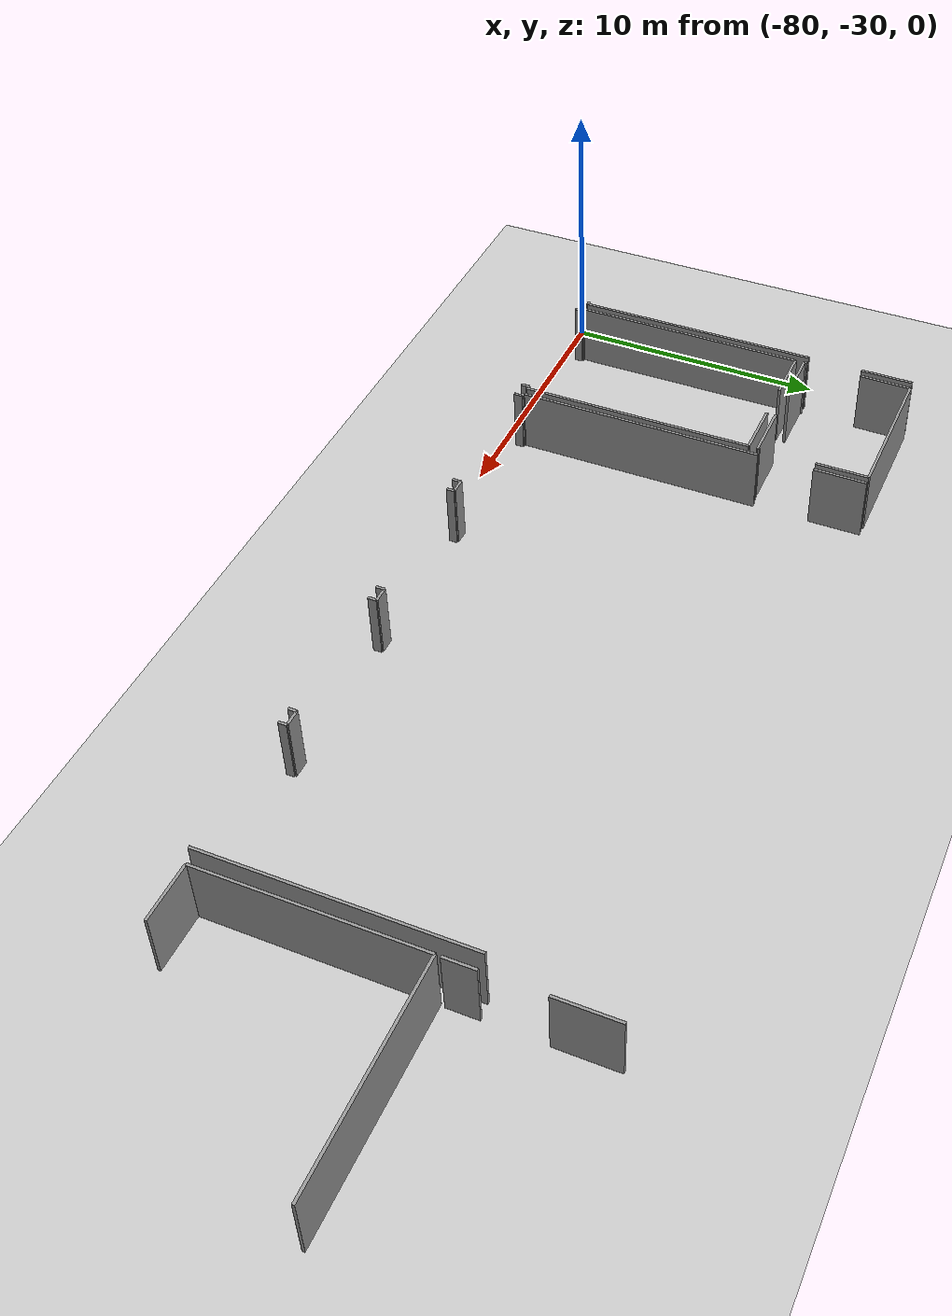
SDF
<sdf version="1.6">
 <world name="default">
  <model name="ground_plane">
   <static>1</static>
   <link name="link">
    <collision name="collision">
     <geometry><plane><normal>0 0 1</normal><size>100 100</size></plane></geometry>
     <surface><friction><ode><mu>100</mu><mu2>50</mu2></ode></friction></surface>
    </collision>
    <visual name="visual">
     <cast_shadows>0</cast_shadows>
     <geometry><plane><normal>0 0 1</normal><size>100 100</size></plane></geometry>
     <material>
      <script><uri>file://media/materials/scripts/gazebo.material</uri><name>Gazebo/Grey</name></script>
     </material>
    </visual>
   </link>
  </model>
  <model name="50010536_PLAN3">
   <static>1</static>
   <link name="Wall_144">
    <collision name="Wall_144_Collision">
     <geometry><box><size>2.02114084373 0.1 2.5</size></box></geometry>
     <pose>1.01057042186 0 1.25 0 0 0</pose>
    </collision>
    <visual name="Wall_144_Visual">
     <pose>1.01057042186 0 1.25 0 0 0</pose>
     <geometry><box><size>2.02114084373 0.1 2.5</size></box></geometry>
     <material>
      <script><uri>file://media/materials/scripts/gazebo.material</uri><name>Gazebo/Grey</name></script>
      <ambient>1 1 1 1</ambient>
     </material>
    </visual>
    <pose>23.7056788242 -45.3773164461 0 0 0 -1.57079632679</pose>
   </link>
   <link name="Wall_145">
    <collision name="Wall_145_Collision">
     <geometry><box><size>9.35987048852 0.1 2.5</size></box></geometry>
     <pose>4.67993524426 0 1.25 0 0 0</pose>
    </collision>
    <visual name="Wall_145_Visual">
     <pose>4.67993524426 0 1.25 0 0 0</pose>
     <geometry><box><size>9.35987048852 0.1 2.5</size></box></geometry>
     <material>
      <script><uri>file://media/materials/scripts/gazebo.material</uri><name>Gazebo/Grey</name></script>
      <ambient>1 1 1 1</ambient>
     </material>
    </visual>
    <pose>23.7056788242 -49.5153350475 0 0 0 -1.57079632679</pose>
   </link>
   <link name="Wall_146">
    <collision name="Wall_146_Collision">
     <geometry><box><size>0.139161349713 0.1 2.5</size></box></geometry>
     <pose>0.0695806748564 0 1.25 0 0 0</pose>
    </collision>
    <visual name="Wall_146_Visual">
     <pose>0.0695806748564 0 1.25 0 0 0</pose>
     <geometry><box><size>0.139161349713 0.1 2.5</size></box></geometry>
     <material>
      <script><uri>file://media/materials/scripts/gazebo.material</uri><name>Gazebo/Grey</name></script>
      <ambient>1 1 1 1</ambient>
     </material>
    </visual>
    <pose>23.7056788242 -58.875205536 0 0 0 3.14159265359</pose>
   </link>
   <link name="Wall_153">
    <collision name="Wall_153_Collision">
     <geometry><box><size>5.65685807701 0.1 2.5</size></box></geometry>
     <pose>2.8284290385 0 1.25 0 0 0</pose>
    </collision>
    <visual name="Wall_153_Visual">
     <pose>2.8284290385 0 1.25 0 0 0</pose>
     <geometry><box><size>5.65685807701 0.1 2.5</size></box></geometry>
     <material>
      <script><uri>file://media/materials/scripts/gazebo.material</uri><name>Gazebo/Grey</name></script>
      <ambient>1 1 1 1</ambient>
     </material>
    </visual>
    <pose>24.0657715138 -45.3674126274 0 0 0 0.0</pose>
   </link>
   <link name="Wall_154">
    <collision name="Wall_154_Collision">
     <geometry><box><size>2.01606196235 0.1 2.5</size></box></geometry>
     <pose>1.00803098118 0 1.25 0 0 0</pose>
    </collision>
    <visual name="Wall_154_Visual">
     <pose>1.00803098118 0 1.25 0 0 0</pose>
     <geometry><box><size>2.01606196235 0.1 2.5</size></box></geometry>
     <material>
      <script><uri>file://media/materials/scripts/gazebo.material</uri><name>Gazebo/Grey</name></script>
      <ambient>1 1 1 1</ambient>
     </material>
    </visual>
    <pose>29.7226295908 -45.3674126274 0 0 0 -1.57079632679</pose>
   </link>
   <link name="Wall_155">
    <collision name="Wall_155_Collision">
     <geometry><box><size>0.0807542138844 0.1 2.5</size></box></geometry>
     <pose>0.0403771069422 0 1.25 0 0 0</pose>
    </collision>
    <visual name="Wall_155_Visual">
     <pose>0.0403771069422 0 1.25 0 0 0</pose>
     <geometry><box><size>0.0807542138844 0.1 2.5</size></box></geometry>
     <material>
      <script><uri>file://media/materials/scripts/gazebo.material</uri><name>Gazebo/Grey</name></script>
      <ambient>1 1 1 1</ambient>
     </material>
    </visual>
    <pose>29.7226295908 -49.5249849221 0 0 0 -1.57079632679</pose>
   </link>
   <link name="Wall_156">
    <collision name="Wall_156_Collision">
     <geometry><box><size>2.15293781545 0.1 2.5</size></box></geometry>
     <pose>1.07646890772 0 1.25 0 0 0</pose>
    </collision>
    <visual name="Wall_156_Visual">
     <pose>1.07646890772 0 1.25 0 0 0</pose>
     <geometry><box><size>2.15293781545 0.1 2.5</size></box></geometry>
     <material>
      <script><uri>file://media/materials/scripts/gazebo.material</uri><name>Gazebo/Grey</name></script>
      <ambient>1 1 1 1</ambient>
     </material>
    </visual>
    <pose>29.7226295908 -49.605739136 0 0 0 3.14159265359</pose>
   </link>
   <link name="Wall_157">
    <collision name="Wall_157_Collision">
     <geometry><box><size>2.0213947878 0.1 2.5</size></box></geometry>
     <pose>1.0106973939 0 1.25 0 0 0</pose>
    </collision>
    <visual name="Wall_157_Visual">
     <pose>1.0106973939 0 1.25 0 0 0</pose>
     <geometry><box><size>2.0213947878 0.1 2.5</size></box></geometry>
     <material>
      <script><uri>file://media/materials/scripts/gazebo.material</uri><name>Gazebo/Grey</name></script>
      <ambient>1 1 1 1</ambient>
     </material>
    </visual>
    <pose>26.0673586643 -49.605739136 0 0 0 3.14159265359</pose>
   </link>
   <link name="Wall_158">
    <collision name="Wall_158_Collision">
     <geometry><box><size>0.109195949592 0.1 2.5</size></box></geometry>
     <pose>0.0545979747961 0 1.25 0 0 0</pose>
    </collision>
    <visual name="Wall_158_Visual">
     <pose>0.0545979747961 0 1.25 0 0 0</pose>
     <geometry><box><size>0.109195949592 0.1 2.5</size></box></geometry>
     <material>
      <script><uri>file://media/materials/scripts/gazebo.material</uri><name>Gazebo/Grey</name></script>
      <ambient>1 1 1 1</ambient>
     </material>
    </visual>
    <pose>24.0459638765 -49.605739136 0 0 0 1.57079632679</pose>
   </link>
   <link name="Wall_159">
    <collision name="Wall_159_Collision">
     <geometry><box><size>1.97908525297 0.1 2.5</size></box></geometry>
     <pose>0.989542626485 0 1.25 0 0 0</pose>
    </collision>
    <visual name="Wall_159_Visual">
     <pose>0.989542626485 0 1.25 0 0 0</pose>
     <geometry><box><size>1.97908525297 0.1 2.5</size></box></geometry>
     <material>
      <script><uri>file://media/materials/scripts/gazebo.material</uri><name>Gazebo/Grey</name></script>
      <ambient>1 1 1 1</ambient>
     </material>
    </visual>
    <pose>24.0459638765 -47.3463987557 0 0 0 1.56078767859</pose>
   </link>
   <link name="Wall_160">
    <collision name="Wall_160_Collision">
     <geometry><box><size>8.9365457258 0.1 2.5</size></box></geometry>
     <pose>4.4682728629 0 1.25 0 0 0</pose>
    </collision>
    <visual name="Wall_160_Visual">
     <pose>4.4682728629 0 1.25 0 0 0</pose>
     <geometry><box><size>8.9365457258 0.1 2.5</size></box></geometry>
     <material>
      <script><uri>file://media/materials/scripts/gazebo.material</uri><name>Gazebo/Grey</name></script>
      <ambient>1 1 1 1</ambient>
     </material>
    </visual>
    <pose>24.0766911088 -58.8896803479 0 0 0 1.57079632679</pose>
   </link>
   <link name="Wall_161">
    <collision name="Wall_161_Collision">
     <geometry><box><size>2.03434593531 0.1 2.5</size></box></geometry>
     <pose>1.01717296765 0 1.25 0 0 0</pose>
    </collision>
    <visual name="Wall_161_Visual">
     <pose>1.01717296765 0 1.25 0 0 0</pose>
     <geometry><box><size>2.03434593531 0.1 2.5</size></box></geometry>
     <material>
      <script><uri>file://media/materials/scripts/gazebo.material</uri><name>Gazebo/Grey</name></script>
      <ambient>1 1 1 1</ambient>
     </material>
    </visual>
    <pose>24.0766911088 -49.9531346221 0 0 0 0.0</pose>
   </link>
   <link name="Wall_162">
    <collision name="Wall_162_Collision">
     <geometry><box><size>2.11230676444 0.1 2.5</size></box></geometry>
     <pose>1.05615338222 0 1.25 0 0 0</pose>
    </collision>
    <visual name="Wall_162_Visual">
     <pose>1.05615338222 0 1.25 0 0 0</pose>
     <geometry><box><size>2.11230676444 0.1 2.5</size></box></geometry>
     <material>
      <script><uri>file://media/materials/scripts/gazebo.material</uri><name>Gazebo/Grey</name></script>
      <ambient>1 1 1 1</ambient>
     </material>
    </visual>
    <pose>27.5973716789 -49.9531346221 0 0 0 0.0</pose>
   </link>
   <link name="Wall_163">
    <collision name="Wall_163_Collision">
     <geometry><box><size>8.93527600546 0.1 2.5</size></box></geometry>
     <pose>4.46763800273 0 1.25 0 0 0</pose>
    </collision>
    <visual name="Wall_163_Visual">
     <pose>4.46763800273 0 1.25 0 0 0</pose>
     <geometry><box><size>8.93527600546 0.1 2.5</size></box></geometry>
     <material>
      <script><uri>file://media/materials/scripts/gazebo.material</uri><name>Gazebo/Grey</name></script>
      <ambient>1 1 1 1</ambient>
     </material>
    </visual>
    <pose>29.7096784433 -49.9531346221 0 0 0 -1.57079632679</pose>
   </link>
   <link name="Wall_164">
    <collision name="Wall_164_Collision">
     <geometry><box><size>0.142208678539 0.1 2.5</size></box></geometry>
     <pose>0.0711043392693 0 1.25 0 0 0</pose>
    </collision>
    <visual name="Wall_164_Visual">
     <pose>0.0711043392693 0 1.25 0 0 0</pose>
     <geometry><box><size>0.142208678539 0.1 2.5</size></box></geometry>
     <material>
      <script><uri>file://media/materials/scripts/gazebo.material</uri><name>Gazebo/Grey</name></script>
      <ambient>1 1 1 1</ambient>
     </material>
    </visual>
    <pose>29.7096784433 -58.8884106276 0 0 0 3.14159265359</pose>
   </link>
   <link name="Wall_165">
    <collision name="Wall_165_Collision">
     <geometry><box><size>0.317684030092 0.1 2.5</size></box></geometry>
     <pose>0.158842015046 0 1.25 0 0 0</pose>
    </collision>
    <visual name="Wall_165_Visual">
     <pose>0.158842015046 0 1.25 0 0 0</pose>
     <geometry><box><size>0.317684030092 0.1 2.5</size></box></geometry>
     <material>
      <script><uri>file://media/materials/scripts/gazebo.material</uri><name>Gazebo/Grey</name></script>
      <ambient>1 1 1 1</ambient>
     </material>
    </visual>
    <pose>29.5674697648 -58.8884106276 0 0 0 -1.57079632679</pose>
   </link>
   <link name="Wall_166">
    <collision name="Wall_166_Collision">
     <geometry><box><size>0.306002602927 0.1 2.5</size></box></geometry>
     <pose>0.153001301463 0 1.25 0 0 0</pose>
    </collision>
    <visual name="Wall_166_Visual">
     <pose>0.153001301463 0 1.25 0 0 0</pose>
     <geometry><box><size>0.306002602927 0.1 2.5</size></box></geometry>
     <material>
      <script><uri>file://media/materials/scripts/gazebo.material</uri><name>Gazebo/Grey</name></script>
      <ambient>1 1 1 1</ambient>
     </material>
    </visual>
    <pose>24.2143287941 -59.2060946577 0 0 0 1.57079632679</pose>
   </link>
   <link name="Wall_167">
    <collision name="Wall_167_Collision">
     <geometry><box><size>0.138030924266 0.1 2.5</size></box></geometry>
     <pose>0.0690154621328 0 1.25 0 0 0</pose>
    </collision>
    <visual name="Wall_167_Visual">
     <pose>0.0690154621328 0 1.25 0 0 0</pose>
     <geometry><box><size>0.138030924266 0.1 2.5</size></box></geometry>
     <material>
      <script><uri>file://media/materials/scripts/gazebo.material</uri><name>Gazebo/Grey</name></script>
      <ambient>1 1 1 1</ambient>
     </material>
    </visual>
    <pose>24.2143287941 -58.9000920547 0 0 0 3.0660906925</pose>
   </link>
   <link name="Wall_168">
    <collision name="Wall_168_Collision">
     <geometry><box><size>9.40380281243 0.1 2.5</size></box></geometry>
     <pose>4.70190140622 0 1.25 0 0 0</pose>
    </collision>
    <visual name="Wall_168_Visual">
     <pose>4.70190140622 0 1.25 0 0 0</pose>
     <geometry><box><size>9.40380281243 0.1 2.5</size></box></geometry>
     <material>
      <script><uri>file://media/materials/scripts/gazebo.material</uri><name>Gazebo/Grey</name></script>
      <ambient>1 1 1 1</ambient>
     </material>
    </visual>
    <pose>30.0596133702 -58.8843475225 0 0 0 1.57079632679</pose>
   </link>
   <link name="Wall_169">
    <collision name="Wall_169_Collision">
     <geometry><box><size>2.01352252166 0.1 2.5</size></box></geometry>
     <pose>1.00676126083 0 1.25 0 0 0</pose>
    </collision>
    <visual name="Wall_169_Visual">
     <pose>1.00676126083 0 1.25 0 0 0</pose>
     <geometry><box><size>2.01352252166 0.1 2.5</size></box></geometry>
     <material>
      <script><uri>file://media/materials/scripts/gazebo.material</uri><name>Gazebo/Grey</name></script>
      <ambient>1 1 1 1</ambient>
     </material>
    </visual>
    <pose>30.0596133702 -47.3547789099 0 0 0 1.57079632679</pose>
   </link>
   <link name="Wall_172">
    <collision name="Wall_172_Collision">
     <geometry><box><size>9.63489191506 0.1 2.5</size></box></geometry>
     <pose>4.81744595753 0 1.25 0 0 0</pose>
    </collision>
    <visual name="Wall_172_Visual">
     <pose>4.81744595753 0 1.25 0 0 0</pose>
     <geometry><box><size>9.63489191506 0.1 2.5</size></box></geometry>
     <material>
      <script><uri>file://media/materials/scripts/gazebo.material</uri><name>Gazebo/Grey</name></script>
      <ambient>1 1 1 1</ambient>
     </material>
    </visual>
    <pose>53.5428371901 -49.5592673714 0 0 0 -1.57079632679</pose>
   </link>
   <link name="Wall_173">
    <collision name="Wall_173_Collision">
     <geometry><box><size>0.310065708028 0.1 2.5</size></box></geometry>
     <pose>0.155032854014 0 1.25 0 0 0</pose>
    </collision>
    <visual name="Wall_173_Visual">
     <pose>0.155032854014 0 1.25 0 0 0</pose>
     <geometry><box><size>0.310065708028 0.1 2.5</size></box></geometry>
     <material>
      <script><uri>file://media/materials/scripts/gazebo.material</uri><name>Gazebo/Grey</name></script>
      <ambient>1 1 1 1</ambient>
     </material>
    </visual>
    <pose>48.2453099705 -59.1941592864 0 0 0 1.57079632679</pose>
   </link>
   <link name="Wall_174">
    <collision name="Wall_174_Collision">
     <geometry><box><size>0.621909024537 0.1 2.5</size></box></geometry>
     <pose>0.310954512269 0 1.25 0 0 0</pose>
    </collision>
    <visual name="Wall_174_Visual">
     <pose>0.310954512269 0 1.25 0 0 0</pose>
     <geometry><box><size>0.621909024537 0.1 2.5</size></box></geometry>
     <material>
      <script><uri>file://media/materials/scripts/gazebo.material</uri><name>Gazebo/Grey</name></script>
      <ambient>1 1 1 1</ambient>
     </material>
    </visual>
    <pose>48.2453099705 -58.8840935784 0 0 0 3.14159265359</pose>
   </link>
   <link name="Wall_175">
    <collision name="Wall_175_Collision">
     <geometry><box><size>0.305748658858 0.1 2.5</size></box></geometry>
     <pose>0.152874329429 0 1.25 0 0 0</pose>
    </collision>
    <visual name="Wall_175_Visual">
     <pose>0.152874329429 0 1.25 0 0 0</pose>
     <geometry><box><size>0.305748658858 0.1 2.5</size></box></geometry>
     <material>
      <script><uri>file://media/materials/scripts/gazebo.material</uri><name>Gazebo/Grey</name></script>
      <ambient>1 1 1 1</ambient>
     </material>
    </visual>
    <pose>47.6234009459 -58.8840935784 0 0 0 -1.57079632679</pose>
   </link>
   <link name="Wall_176">
    <collision name="Wall_176_Collision">
     <geometry><box><size>0.323778687744 0.1 2.5</size></box></geometry>
     <pose>0.161889343872 0 1.25 0 0 0</pose>
    </collision>
    <visual name="Wall_176_Visual">
     <pose>0.161889343872 0 1.25 0 0 0</pose>
     <geometry><box><size>0.323778687744 0.1 2.5</size></box></geometry>
     <material>
      <script><uri>file://media/materials/scripts/gazebo.material</uri><name>Gazebo/Grey</name></script>
      <ambient>1 1 1 1</ambient>
     </material>
    </visual>
    <pose>42.2004253563 -59.1898422372 0 0 0 1.57079632679</pose>
   </link>
   <link name="Wall_177">
    <collision name="Wall_177_Collision">
     <geometry><box><size>0.570866266705 0.1 2.5</size></box></geometry>
     <pose>0.285433133352 0 1.25 0 0 0</pose>
    </collision>
    <visual name="Wall_177_Visual">
     <pose>0.285433133352 0 1.25 0 0 0</pose>
     <geometry><box><size>0.570866266705 0.1 2.5</size></box></geometry>
     <material>
      <script><uri>file://media/materials/scripts/gazebo.material</uri><name>Gazebo/Grey</name></script>
      <ambient>1 1 1 1</ambient>
     </material>
    </visual>
    <pose>42.2004253563 -58.8660635495 0 0 0 3.14159265359</pose>
   </link>
   <link name="Wall_178">
    <collision name="Wall_178_Collision">
     <geometry><box><size>0.318445862299 0.1 2.5</size></box></geometry>
     <pose>0.159222931149 0 1.25 0 0 0</pose>
    </collision>
    <visual name="Wall_178_Visual">
     <pose>0.159222931149 0 1.25 0 0 0</pose>
     <geometry><box><size>0.318445862299 0.1 2.5</size></box></geometry>
     <material>
      <script><uri>file://media/materials/scripts/gazebo.material</uri><name>Gazebo/Grey</name></script>
      <ambient>1 1 1 1</ambient>
     </material>
    </visual>
    <pose>41.6295590896 -58.8660635495 0 0 0 -1.57079632679</pose>
   </link>
   <link name="Wall_179">
    <collision name="Wall_179_Collision">
     <geometry><box><size>0.30320921817 0.1 2.5</size></box></geometry>
     <pose>0.151604609085 0 1.25 0 0 0</pose>
    </collision>
    <visual name="Wall_179_Visual">
     <pose>0.151604609085 0 1.25 0 0 0</pose>
     <geometry><box><size>0.30320921817 0.1 2.5</size></box></geometry>
     <material>
      <script><uri>file://media/materials/scripts/gazebo.material</uri><name>Gazebo/Grey</name></script>
      <ambient>1 1 1 1</ambient>
     </material>
    </visual>
    <pose>36.1608735676 -59.1845094118 0 0 0 1.57079632679</pose>
   </link>
   <link name="Wall_180">
    <collision name="Wall_180_Collision">
     <geometry><box><size>0.552328349681 0.1 2.5</size></box></geometry>
     <pose>0.27616417484 0 1.25 0 0 0</pose>
    </collision>
    <visual name="Wall_180_Visual">
     <pose>0.27616417484 0 1.25 0 0 0</pose>
     <geometry><box><size>0.552328349681 0.1 2.5</size></box></geometry>
     <material>
      <script><uri>file://media/materials/scripts/gazebo.material</uri><name>Gazebo/Grey</name></script>
      <ambient>1 1 1 1</ambient>
     </material>
    </visual>
    <pose>36.1608735676 -58.8813001936 0 0 0 3.14159265359</pose>
   </link>
   <link name="Wall_181">
    <collision name="Wall_181_Collision">
     <geometry><box><size>0.327587848776 0.1 2.5</size></box></geometry>
     <pose>0.163793924388 0 1.25 0 0 0</pose>
    </collision>
    <visual name="Wall_181_Visual">
     <pose>0.163793924388 0 1.25 0 0 0</pose>
     <geometry><box><size>0.327587848776 0.1 2.5</size></box></geometry>
     <material>
      <script><uri>file://media/materials/scripts/gazebo.material</uri><name>Gazebo/Grey</name></script>
      <ambient>1 1 1 1</ambient>
     </material>
    </visual>
    <pose>35.6085452179 -58.8813001936 0 0 0 -1.57079632679</pose>
   </link>
   <link name="Wall_182">
    <collision name="Wall_182_Collision">
     <geometry><box><size>0.324032631813 0.1 2.5</size></box></geometry>
     <pose>0.162016315906 0 1.25 0 0 0</pose>
    </collision>
    <visual name="Wall_182_Visual">
     <pose>0.162016315906 0 1.25 0 0 0</pose>
     <geometry><box><size>0.324032631813 0.1 2.5</size></box></geometry>
     <material>
      <script><uri>file://media/materials/scripts/gazebo.material</uri><name>Gazebo/Grey</name></script>
      <ambient>1 1 1 1</ambient>
     </material>
    </visual>
    <pose>30.1944576707 -59.2088880424 0 0 0 1.57079632679</pose>
   </link>
   <link name="Wall_183">
    <collision name="Wall_183_Collision">
     <geometry><box><size>0.134845257014 0.1 2.5</size></box></geometry>
     <pose>0.0674226285071 0 1.25 0 0 0</pose>
    </collision>
    <visual name="Wall_183_Visual">
     <pose>0.0674226285071 0 1.25 0 0 0</pose>
     <geometry><box><size>0.134845257014 0.1 2.5</size></box></geometry>
     <material>
      <script><uri>file://media/materials/scripts/gazebo.material</uri><name>Gazebo/Grey</name></script>
      <ambient>1 1 1 1</ambient>
     </material>
    </visual>
    <pose>30.1944576707 -58.8848554106 0 0 0 3.13782619306</pose>
   </link>
   <link name="Wall_290">
    <collision name="Wall_290_Collision">
     <geometry><box><size>8.07973843761 0.1 2.5</size></box></geometry>
     <pose>4.0398692188 0 1.25 0 0 0</pose>
    </collision>
    <visual name="Wall_290_Visual">
     <pose>4.0398692188 0 1.25 0 0 0</pose>
     <geometry><box><size>8.07973843761 0.1 2.5</size></box></geometry>
     <material>
      <script><uri>file://media/materials/scripts/gazebo.material</uri><name>Gazebo/Grey</name></script>
      <ambient>1 1 1 1</ambient>
     </material>
    </visual>
    <pose>54.1088785195 -58.9280259023 0 0 0 1.57079632679</pose>
   </link>
   <link name="Wall_291">
    <collision name="Wall_291_Collision">
     <geometry><box><size>8.03225089674 0.1 2.5</size></box></geometry>
     <pose>4.01612544837 0 1.25 0 0 0</pose>
    </collision>
    <visual name="Wall_291_Visual">
     <pose>4.01612544837 0 1.25 0 0 0</pose>
     <geometry><box><size>8.03225089674 0.1 2.5</size></box></geometry>
     <material>
      <script><uri>file://media/materials/scripts/gazebo.material</uri><name>Gazebo/Grey</name></script>
      <ambient>1 1 1 1</ambient>
     </material>
    </visual>
    <pose>54.1088785195 -50.8482874647 0 0 0 0.0</pose>
   </link>
   <link name="Wall_301">
    <collision name="Wall_301_Collision">
     <geometry><box><size>2.15319249328 0.1 2.5</size></box></geometry>
     <pose>1.07659624664 0 1.25 0 0 0</pose>
    </collision>
    <visual name="Wall_301_Visual">
     <pose>1.07659624664 0 1.25 0 0 0</pose>
     <geometry><box><size>2.15319249328 0.1 2.5</size></box></geometry>
     <material>
      <script><uri>file://media/materials/scripts/gazebo.material</uri><name>Gazebo/Grey</name></script>
      <ambient>1 1 1 1</ambient>
     </material>
    </visual>
    <pose>56.262070279 -58.9298035108 0 0 0 3.14076708472</pose>
   </link>
   <link name="Wall_309">
    <collision name="Wall_309_Collision">
     <geometry><box><size>1.14325619782 0.1 2.5</size></box></geometry>
     <pose>0.571628098911 0 1.25 0 0 0</pose>
    </collision>
    <visual name="Wall_309_Visual">
     <pose>0.571628098911 0 1.25 0 0 0</pose>
     <geometry><box><size>1.14325619782 0.1 2.5</size></box></geometry>
     <material>
      <script><uri>file://media/materials/scripts/gazebo.material</uri><name>Gazebo/Grey</name></script>
      <ambient>1 1 1 1</ambient>
     </material>
    </visual>
    <pose>54.118020506 -50.6672253436 0 0 0 1.57079632679</pose>
   </link>
   <link name="Wall_310">
    <collision name="Wall_310_Collision">
     <geometry><box><size>2.26213376504 0.1 2.5</size></box></geometry>
     <pose>1.13106688252 0 1.25 0 0 0</pose>
    </collision>
    <visual name="Wall_310_Visual">
     <pose>1.13106688252 0 1.25 0 0 0</pose>
     <geometry><box><size>2.26213376504 0.1 2.5</size></box></geometry>
     <material>
      <script><uri>file://media/materials/scripts/gazebo.material</uri><name>Gazebo/Grey</name></script>
      <ambient>1 1 1 1</ambient>
     </material>
    </visual>
    <pose>54.118020506 -47.3651906168 0 0 0 1.57079632679</pose>
   </link>
   <pose>-102.5 29.6500539631 0 0 0 0</pose>
  </model>
 </world>
</sdf>
